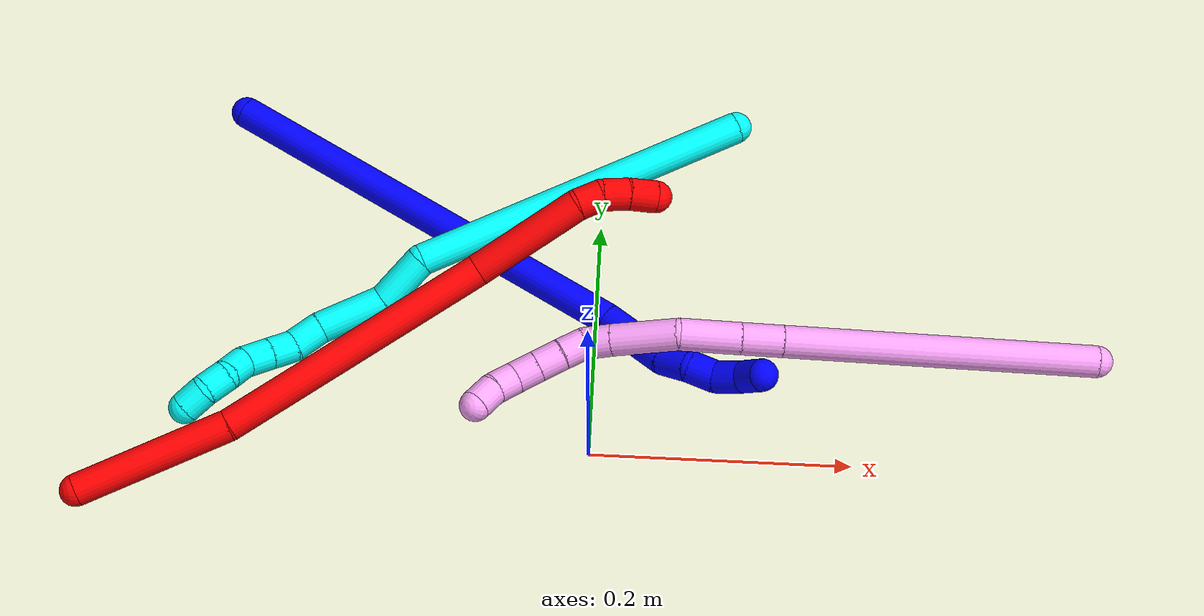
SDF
<sdf version="1.7">
 <world name="default">
  <plugin name="TubeGeneratorPlugin" filename="libtube_generator_plugin.so"/>
  <model name="photoneo_s_sensor">
   <static>1</static>
   <pose>0 0 2 1.57079 1.57079 3.14159</pose>
   <link name="link">
    <inertial><mass>0.1</mass></inertial>
    <sensor name="sensor" type="depth">
     <update_rate>30</update_rate>
     <camera>
      <horizontal_fov>1.22</horizontal_fov>
      <image><width>1920</width><height>1200</height><format>B8G8R8</format></image>
      <clip><near>0.1</near><far>4</far></clip>
      <depth_camera><output>points</output></depth_camera>
     </camera>
     <plugin name="camera_plugin" filename="libgazebo_ros_depth_camera.so">
      <baseline>0.2</baseline>
      <alwaysOn>1</alwaysOn>
      <updateRate>0.0</updateRate>
      <cameraName>camera_ir</cameraName>
      <imageTopicName>/camera/color/image_raw</imageTopicName>
      <cameraInfoTopicName>/camera/color/camera_info</cameraInfoTopicName>
      <depthImageTopicName>/camera/depth/image_raw</depthImageTopicName>
      <depthImageCameraInfoTopicName>/camera/depth/camera_info</depthImageCameraInfoTopicName>
      <pointCloudTopicName>/camera/depth/points</pointCloudTopicName>
      <frameName>fr_optical</frameName>
      <pointCloudCutoff>0.1</pointCloudCutoff>
      <pointCloudCutoffMax>2.0</pointCloudCutoffMax>
      <distortionK1>0</distortionK1>
      <distortionK2>0</distortionK2>
      <distortionK3>0</distortionK3>
      <distortionT1>0</distortionT1>
      <distortionT2>0</distortionT2>
      <CxPrime>0</CxPrime>
      <Cx>0</Cx>
      <Cy>0</Cy>
      <focalLength>0</focalLength>
      <hackBaseline>0</hackBaseline>
     </plugin>
    </sensor>
   </link>
  </model>
  <gravity>0 0 -9.8</gravity>
  <magnetic_field>6e-06 2.3e-05 -4.2e-05</magnetic_field>
  <atmosphere type="adiabatic"/>
  <physics name="default_physics" default="0" type="ode">
   <max_step_size>0.003</max_step_size>
   <real_time_factor>1</real_time_factor>
   <real_time_update_rate>1000</real_time_update_rate>
   <max_contacts>10000</max_contacts>
   <ode>
    <solver>
     <type>quick</type>
     <iters>100</iters>
     <sor>1.3</sor>
     <use_dynamic_moi_rescaling>0</use_dynamic_moi_rescaling>
    </solver>
    <constraints>
     <contact_max_correcting_vel>0</contact_max_correcting_vel>
     <contact_surface_layer>0.001</contact_surface_layer>
     <cfm>0</cfm>
     <erp>0.2</erp>
    </constraints>
   </ode>
  </physics>
  <scene><ambient>0.4 0.4 0.4 1</ambient><background>0.7 0.7 0.7 1</background><shadows>0</shadows></scene>
  <audio><device>default</device></audio>
  <spherical_coordinates>
   <surface_model>EARTH_WGS84</surface_model>
   <latitude_deg>0</latitude_deg>
   <longitude_deg>0</longitude_deg>
   <elevation>0</elevation>
   <heading_deg>0</heading_deg>
  </spherical_coordinates>
  <model name="bin">
   <static>1</static>
   <link name="bottom">
    <collision name="collision-bottom">
     <pose>0 0 -0.01 0 -0 0</pose>
     <geometry><box><size>0.8 0.6 0.02</size></box></geometry>
     <surface>
      <friction><ode><mu>100</mu><mu2>100</mu2></ode></friction>
      <contact><collide_bitmask>65535</collide_bitmask></contact>
     </surface>
    </collision>
   </link>
   <link name="west_wall">
    <collision name="collision-west_wall">
     <pose>-0.41 0 0.1 0 -0 0</pose>
     <geometry><box><size>0.02 0.6 0.2</size></box></geometry>
     <surface>
      <friction><ode><mu>100</mu><mu2>100</mu2></ode></friction>
      <contact><collide_bitmask>65535</collide_bitmask></contact>
     </surface>
    </collision>
   </link>
   <link name="east_wall">
    <collision name="collision-east_wall">
     <pose>0.41 0 0.1 0 -0 0</pose>
     <geometry><box><size>0.02 0.6 0.2</size></box></geometry>
     <surface>
      <friction><ode><mu>100</mu><mu2>100</mu2></ode></friction>
      <contact><collide_bitmask>65535</collide_bitmask></contact>
     </surface>
    </collision>
   </link>
   <link name="south_wall">
    <collision name="collision-south_wall">
     <pose>0 -0.31 0.1 0 -0 0</pose>
     <geometry><box><size>0.8 0.02 0.2</size></box></geometry>
     <surface>
      <friction><ode><mu>100</mu><mu2>100</mu2></ode></friction>
      <contact><collide_bitmask>65535</collide_bitmask></contact>
     </surface>
    </collision>
   </link>
   <link name="north_wall">
    <collision name="collision-north_wall">
     <pose>0 0.31 0.1 0 -0 0</pose>
     <geometry><box><size>0.8 0.02 0.2</size></box></geometry>
     <surface>
      <friction><ode><mu>100</mu><mu2>100</mu2></ode></friction>
      <contact><collide_bitmask>65535</collide_bitmask></contact>
     </surface>
    </collision>
   </link>
  </model>
  <model name="1">
   <static>0</static>
   <link name="1">
    <collision name="collision-cylinder-e_1_1_4">
     <pose>0.153088 -0.056311 0.064611 0.716864 1.06042 0.432335</pose>
     <geometry><cylinder><radius>0.0125</radius><length>0.350894</length></cylinder></geometry>
     <surface>
      <friction><ode><mu>1.16</mu><mu2>1.16</mu2><slip1>0</slip1><slip2>0</slip2></ode></friction>
      <contact><ode><kp>1e+06</kp><kd>1</kd><max_vel>0</max_vel><min_depth>0.001</min_depth></ode></contact>
     </surface>
    </collision>
    <visual name="visual-cylinder-e_1_1_4">
     <pose>0.153088 -0.056311 0.064611 0.716864 1.06042 0.432335</pose>
     <geometry><cylinder><radius>0.0125</radius><length>0.350894</length></cylinder></geometry>
     <material><ambient>0 0 1 1</ambient></material>
    </visual>
    <collision name="collision-cylinder-e_2_4_5">
     <pose>0.334237 -0.118992 0.133987 0.928641 1.29458 0.723853</pose>
     <geometry><cylinder><radius>0.0125</radius><length>0.058332</length></cylinder></geometry>
     <surface>
      <friction><ode><mu>1.16</mu><mu2>1.16</mu2><slip1>0</slip1><slip2>0</slip2></ode></friction>
      <contact><ode><kp>1e+06</kp><kd>1</kd><max_vel>0</max_vel><min_depth>0.001</min_depth></ode></contact>
     </surface>
    </collision>
    <visual name="visual-cylinder-e_2_4_5">
     <pose>0.334237 -0.118992 0.133987 0.928641 1.29458 0.723853</pose>
     <geometry><cylinder><radius>0.0125</radius><length>0.058332</length></cylinder></geometry>
     <material><ambient>0 0 1 1</ambient></material>
    </visual>
    <collision name="collision-cylinder-e_3_5_6">
     <pose>0.373383 -0.13146 0.138743 1.57209 1.06783 1.06897</pose>
     <geometry><cylinder><radius>0.0125</radius><length>0.025303</length></cylinder></geometry>
     <surface>
      <friction><ode><mu>1.16</mu><mu2>1.16</mu2><slip1>0</slip1><slip2>0</slip2></ode></friction>
      <contact><ode><kp>1e+06</kp><kd>1</kd><max_vel>0</max_vel><min_depth>0.001</min_depth></ode></contact>
     </surface>
    </collision>
    <visual name="visual-cylinder-e_3_5_6">
     <pose>0.373383 -0.13146 0.138743 1.57209 1.06783 1.06897</pose>
     <geometry><cylinder><radius>0.0125</radius><length>0.025303</length></cylinder></geometry>
     <material><ambient>0 0 1 1</ambient></material>
    </visual>
    <collision name="collision-cylinder-e_4_6_7">
     <pose>0.393169 -0.142444 0.143148 0.836145 0.923032 0.43491</pose>
     <geometry><cylinder><radius>0.0125</radius><length>0.021823</length></cylinder></geometry>
     <surface>
      <friction><ode><mu>1.16</mu><mu2>1.16</mu2><slip1>0</slip1><slip2>0</slip2></ode></friction>
      <contact><ode><kp>1e+06</kp><kd>1</kd><max_vel>0</max_vel><min_depth>0.001</min_depth></ode></contact>
     </surface>
    </collision>
    <visual name="visual-cylinder-e_4_6_7">
     <pose>0.393169 -0.142444 0.143148 0.836145 0.923032 0.43491</pose>
     <geometry><cylinder><radius>0.0125</radius><length>0.021823</length></cylinder></geometry>
     <material><ambient>0 0 1 1</ambient></material>
    </visual>
    <collision name="collision-cylinder-e_5_7_8">
     <pose>0.410038 -0.155245 0.147635 1.56158 0.801151 0.794556</pose>
     <geometry><cylinder><radius>0.0125</radius><length>0.022749</length></cylinder></geometry>
     <surface>
      <friction><ode><mu>1.16</mu><mu2>1.16</mu2><slip1>0</slip1><slip2>0</slip2></ode></friction>
      <contact><ode><kp>1e+06</kp><kd>1</kd><max_vel>0</max_vel><min_depth>0.001</min_depth></ode></contact>
     </surface>
    </collision>
    <visual name="visual-cylinder-e_5_7_8">
     <pose>0.410038 -0.155245 0.147635 1.56158 0.801151 0.794556</pose>
     <geometry><cylinder><radius>0.0125</radius><length>0.022749</length></cylinder></geometry>
     <material><ambient>0 0 1 1</ambient></material>
    </visual>
    <collision name="collision-cylinder-e_6_8_2">
     <pose>0.425922 -0.169082 0.143887 2.14375 0.830569 1.36064</pose>
     <geometry><cylinder><radius>0.0125</radius><length>0.020899</length></cylinder></geometry>
     <surface>
      <friction><ode><mu>1.16</mu><mu2>1.16</mu2><slip1>0</slip1><slip2>0</slip2></ode></friction>
      <contact><ode><kp>1e+06</kp><kd>1</kd><max_vel>0</max_vel><min_depth>0.001</min_depth></ode></contact>
     </surface>
    </collision>
    <visual name="visual-cylinder-e_6_8_2">
     <pose>0.425922 -0.169082 0.143887 2.14375 0.830569 1.36064</pose>
     <geometry><cylinder><radius>0.0125</radius><length>0.020899</length></cylinder></geometry>
     <material><ambient>0 0 1 1</ambient></material>
    </visual>
    <collision name="collision-sphere-2">
     <pose>0.433637 -0.175004 0.140066 0 -0 0</pose>
     <geometry><sphere><radius>0.0125</radius></sphere></geometry>
     <surface>
      <friction><ode><mu>1.16</mu><mu2>1.16</mu2><slip1>0</slip1><slip2>0</slip2></ode></friction>
      <contact><ode><kp>1e+06</kp><kd>1</kd><max_vel>0</max_vel><min_depth>0.001</min_depth></ode></contact>
     </surface>
    </collision>
    <visual name="visual-sphere-2">
     <pose>0.433637 -0.175004 0.140066 0 -0 0</pose>
     <geometry><sphere><radius>0.0125</radius></sphere></geometry>
     <material><ambient>0 0 1 1</ambient></material>
    </visual>
    <collision name="collision-sphere-4">
     <pose>0.306177 -0.112622 0.129223 0 -0 0</pose>
     <geometry><sphere><radius>0.0125</radius></sphere></geometry>
     <surface>
      <friction><ode><mu>1.16</mu><mu2>1.16</mu2><slip1>0</slip1><slip2>0</slip2></ode></friction>
      <contact><ode><kp>1e+06</kp><kd>1</kd><max_vel>0</max_vel><min_depth>0.001</min_depth></ode></contact>
     </surface>
    </collision>
    <visual name="visual-sphere-4">
     <pose>0.306177 -0.112622 0.129223 0 -0 0</pose>
     <geometry><sphere><radius>0.0125</radius></sphere></geometry>
     <material><ambient>0 0 1 1</ambient></material>
    </visual>
    <collision name="collision-sphere-1">
     <geometry><sphere><radius>0.0125</radius></sphere></geometry>
     <surface>
      <friction><ode><mu>1.16</mu><mu2>1.16</mu2><slip1>0</slip1><slip2>0</slip2></ode></friction>
      <contact><ode><kp>1e+06</kp><kd>1</kd><max_vel>0</max_vel><min_depth>0.001</min_depth></ode></contact>
     </surface>
    </collision>
    <visual name="visual-sphere-1">
     <geometry><sphere><radius>0.0125</radius></sphere></geometry>
     <material><ambient>0 0 1 1</ambient></material>
    </visual>
    <collision name="collision-sphere-8">
     <pose>0.418207 -0.16316 0.147708 0 -0 0</pose>
     <geometry><sphere><radius>0.0125</radius></sphere></geometry>
     <surface>
      <friction><ode><mu>1.16</mu><mu2>1.16</mu2><slip1>0</slip1><slip2>0</slip2></ode></friction>
      <contact><ode><kp>1e+06</kp><kd>1</kd><max_vel>0</max_vel><min_depth>0.001</min_depth></ode></contact>
     </surface>
    </collision>
    <visual name="visual-sphere-8">
     <pose>0.418207 -0.16316 0.147708 0 -0 0</pose>
     <geometry><sphere><radius>0.0125</radius></sphere></geometry>
     <material><ambient>0 0 1 1</ambient></material>
    </visual>
    <collision name="collision-sphere-5">
     <pose>0.362298 -0.125362 0.138751 0 -0 0</pose>
     <geometry><sphere><radius>0.0125</radius></sphere></geometry>
     <surface>
      <friction><ode><mu>1.16</mu><mu2>1.16</mu2><slip1>0</slip1><slip2>0</slip2></ode></friction>
      <contact><ode><kp>1e+06</kp><kd>1</kd><max_vel>0</max_vel><min_depth>0.001</min_depth></ode></contact>
     </surface>
    </collision>
    <visual name="visual-sphere-5">
     <pose>0.362298 -0.125362 0.138751 0 -0 0</pose>
     <geometry><sphere><radius>0.0125</radius></sphere></geometry>
     <material><ambient>0 0 1 1</ambient></material>
    </visual>
    <collision name="collision-sphere-6">
     <pose>0.384467 -0.137558 0.138735 0 -0 0</pose>
     <geometry><sphere><radius>0.0125</radius></sphere></geometry>
     <surface>
      <friction><ode><mu>1.16</mu><mu2>1.16</mu2><slip1>0</slip1><slip2>0</slip2></ode></friction>
      <contact><ode><kp>1e+06</kp><kd>1</kd><max_vel>0</max_vel><min_depth>0.001</min_depth></ode></contact>
     </surface>
    </collision>
    <visual name="visual-sphere-6">
     <pose>0.384467 -0.137558 0.138735 0 -0 0</pose>
     <geometry><sphere><radius>0.0125</radius></sphere></geometry>
     <material><ambient>0 0 1 1</ambient></material>
    </visual>
    <collision name="collision-sphere-7">
     <pose>0.40187 -0.14733 0.147562 0 -0 0</pose>
     <geometry><sphere><radius>0.0125</radius></sphere></geometry>
     <surface>
      <friction><ode><mu>1.16</mu><mu2>1.16</mu2><slip1>0</slip1><slip2>0</slip2></ode></friction>
      <contact><ode><kp>1e+06</kp><kd>1</kd><max_vel>0</max_vel><min_depth>0.001</min_depth></ode></contact>
     </surface>
    </collision>
    <visual name="visual-sphere-7">
     <pose>0.40187 -0.14733 0.147562 0 -0 0</pose>
     <geometry><sphere><radius>0.0125</radius></sphere></geometry>
     <material><ambient>0 0 1 1</ambient></material>
    </visual>
    <inertial>
     <pose>0.218943 -0.080401 0.086975 0 -0 0</pose>
     <mass>0.5</mass>
     <inertia>
      <ixx>0.00239</ixx>
      <ixy>0</ixy>
      <ixz>0</ixz>
      <iyy>0.004098</iyy>
      <iyz>0</iyz>
      <izz>-0.001998</izz>
     </inertia>
    </inertial>
   </link>
   <pose>-0.29351 0.288501 0.012214 -2.75116 -0.242989 -0.979643</pose>
  </model>
  <model name="2">
   <static>0</static>
   <link name="2">
    <collision name="collision-cylinder-e_1_1_4">
     <pose>0.020465 0.006267 -0.057775 -3.03355 0.338591 -2.52881</pose>
     <geometry><cylinder><radius>0.0125</radius><length>0.123223</length></cylinder></geometry>
     <surface>
      <friction><ode><mu>1.16</mu><mu2>1.16</mu2><slip1>0</slip1><slip2>0</slip2></ode></friction>
      <contact><ode><kp>1e+06</kp><kd>1</kd><max_vel>0</max_vel><min_depth>0.001</min_depth></ode></contact>
     </surface>
    </collision>
    <visual name="visual-cylinder-e_1_1_4">
     <pose>0.020465 0.006267 -0.057775 -3.03355 0.338591 -2.52881</pose>
     <geometry><cylinder><radius>0.0125</radius><length>0.123223</length></cylinder></geometry>
     <material><ambient>1 0 0 1</ambient></material>
    </visual>
    <collision name="collision-cylinder-e_2_4_5">
     <pose>0.075718 0.042042 -0.216984 -2.8585 0.318126 -1.68896</pose>
     <geometry><cylinder><radius>0.0125</radius><length>0.222442</length></cylinder></geometry>
     <surface>
      <friction><ode><mu>1.16</mu><mu2>1.16</mu2><slip1>0</slip1><slip2>0</slip2></ode></friction>
      <contact><ode><kp>1e+06</kp><kd>1</kd><max_vel>0</max_vel><min_depth>0.001</min_depth></ode></contact>
     </surface>
    </collision>
    <visual name="visual-cylinder-e_2_4_5">
     <pose>0.075718 0.042042 -0.216984 -2.8585 0.318126 -1.68896</pose>
     <geometry><cylinder><radius>0.0125</radius><length>0.222442</length></cylinder></geometry>
     <material><ambient>1 0 0 1</ambient></material>
    </visual>
    <collision name="collision-cylinder-e_3_5_6">
     <pose>0.133521 0.081876 -0.356732 -2.87833 0.525593 -2.22689</pose>
     <geometry><cylinder><radius>0.0125</radius><length>0.091742</length></cylinder></geometry>
     <surface>
      <friction><ode><mu>1.16</mu><mu2>1.16</mu2><slip1>0</slip1><slip2>0</slip2></ode></friction>
      <contact><ode><kp>1e+06</kp><kd>1</kd><max_vel>0</max_vel><min_depth>0.001</min_depth></ode></contact>
     </surface>
    </collision>
    <visual name="visual-cylinder-e_3_5_6">
     <pose>0.133521 0.081876 -0.356732 -2.87833 0.525593 -2.22689</pose>
     <geometry><cylinder><radius>0.0125</radius><length>0.091742</length></cylinder></geometry>
     <material><ambient>1 0 0 1</ambient></material>
    </visual>
    <collision name="collision-cylinder-e_4_6_7">
     <pose>0.159566 0.093208 -0.404606 -3.03669 0.305327 -2.48393</pose>
     <geometry><cylinder><radius>0.0125</radius><length>0.020162</length></cylinder></geometry>
     <surface>
      <friction><ode><mu>1.16</mu><mu2>1.16</mu2><slip1>0</slip1><slip2>0</slip2></ode></friction>
      <contact><ode><kp>1e+06</kp><kd>1</kd><max_vel>0</max_vel><min_depth>0.001</min_depth></ode></contact>
     </surface>
    </collision>
    <visual name="visual-cylinder-e_4_6_7">
     <pose>0.159566 0.093208 -0.404606 -3.03669 0.305327 -2.48393</pose>
     <geometry><cylinder><radius>0.0125</radius><length>0.020162</length></cylinder></geometry>
     <material><ambient>1 0 0 1</ambient></material>
    </visual>
    <collision name="collision-cylinder-e_5_7_8">
     <pose>0.164188 0.091975 -0.424325 2.92449 0.15183 1.2187</pose>
     <geometry><cylinder><radius>0.0125</radius><length>0.021043</length></cylinder></geometry>
     <surface>
      <friction><ode><mu>1.16</mu><mu2>1.16</mu2><slip1>0</slip1><slip2>0</slip2></ode></friction>
      <contact><ode><kp>1e+06</kp><kd>1</kd><max_vel>0</max_vel><min_depth>0.001</min_depth></ode></contact>
     </surface>
    </collision>
    <visual name="visual-cylinder-e_5_7_8">
     <pose>0.164188 0.091975 -0.424325 2.92449 0.15183 1.2187</pose>
     <geometry><cylinder><radius>0.0125</radius><length>0.021043</length></cylinder></geometry>
     <material><ambient>1 0 0 1</ambient></material>
    </visual>
    <collision name="collision-cylinder-e_6_8_2">
     <pose>0.166494 0.086256 -0.444568 2.80949 0.066882 0.394046</pose>
     <geometry><cylinder><radius>0.0125</radius><length>0.021388</length></cylinder></geometry>
     <surface>
      <friction><ode><mu>1.16</mu><mu2>1.16</mu2><slip1>0</slip1><slip2>0</slip2></ode></friction>
      <contact><ode><kp>1e+06</kp><kd>1</kd><max_vel>0</max_vel><min_depth>0.001</min_depth></ode></contact>
     </surface>
    </collision>
    <visual name="visual-cylinder-e_6_8_2">
     <pose>0.166494 0.086256 -0.444568 2.80949 0.066882 0.394046</pose>
     <geometry><cylinder><radius>0.0125</radius><length>0.021388</length></cylinder></geometry>
     <material><ambient>1 0 0 1</ambient></material>
    </visual>
    <collision name="collision-sphere-2">
     <pose>0.167209 0.082777 -0.454655 0 -0 0</pose>
     <geometry><sphere><radius>0.0125</radius></sphere></geometry>
     <surface>
      <friction><ode><mu>1.16</mu><mu2>1.16</mu2><slip1>0</slip1><slip2>0</slip2></ode></friction>
      <contact><ode><kp>1e+06</kp><kd>1</kd><max_vel>0</max_vel><min_depth>0.001</min_depth></ode></contact>
     </surface>
    </collision>
    <visual name="visual-sphere-2">
     <pose>0.167209 0.082777 -0.454655 0 -0 0</pose>
     <geometry><sphere><radius>0.0125</radius></sphere></geometry>
     <material><ambient>1 0 0 1</ambient></material>
    </visual>
    <collision name="collision-sphere-4">
     <pose>0.04093 0.012533 -0.115549 0 -0 0</pose>
     <geometry><sphere><radius>0.0125</radius></sphere></geometry>
     <surface>
      <friction><ode><mu>1.16</mu><mu2>1.16</mu2><slip1>0</slip1><slip2>0</slip2></ode></friction>
      <contact><ode><kp>1e+06</kp><kd>1</kd><max_vel>0</max_vel><min_depth>0.001</min_depth></ode></contact>
     </surface>
    </collision>
    <visual name="visual-sphere-4">
     <pose>0.04093 0.012533 -0.115549 0 -0 0</pose>
     <geometry><sphere><radius>0.0125</radius></sphere></geometry>
     <material><ambient>1 0 0 1</ambient></material>
    </visual>
    <collision name="collision-sphere-1">
     <geometry><sphere><radius>0.0125</radius></sphere></geometry>
     <surface>
      <friction><ode><mu>1.16</mu><mu2>1.16</mu2><slip1>0</slip1><slip2>0</slip2></ode></friction>
      <contact><ode><kp>1e+06</kp><kd>1</kd><max_vel>0</max_vel><min_depth>0.001</min_depth></ode></contact>
     </surface>
    </collision>
    <visual name="visual-sphere-1">
     <geometry><sphere><radius>0.0125</radius></sphere></geometry>
     <material><ambient>1 0 0 1</ambient></material>
    </visual>
    <collision name="collision-sphere-8">
     <pose>0.165779 0.089735 -0.434481 0 -0 0</pose>
     <geometry><sphere><radius>0.0125</radius></sphere></geometry>
     <surface>
      <friction><ode><mu>1.16</mu><mu2>1.16</mu2><slip1>0</slip1><slip2>0</slip2></ode></friction>
      <contact><ode><kp>1e+06</kp><kd>1</kd><max_vel>0</max_vel><min_depth>0.001</min_depth></ode></contact>
     </surface>
    </collision>
    <visual name="visual-sphere-8">
     <pose>0.165779 0.089735 -0.434481 0 -0 0</pose>
     <geometry><sphere><radius>0.0125</radius></sphere></geometry>
     <material><ambient>1 0 0 1</ambient></material>
    </visual>
    <collision name="collision-sphere-5">
     <pose>0.110507 0.07155 -0.31842 0 -0 0</pose>
     <geometry><sphere><radius>0.0125</radius></sphere></geometry>
     <surface>
      <friction><ode><mu>1.16</mu><mu2>1.16</mu2><slip1>0</slip1><slip2>0</slip2></ode></friction>
      <contact><ode><kp>1e+06</kp><kd>1</kd><max_vel>0</max_vel><min_depth>0.001</min_depth></ode></contact>
     </surface>
    </collision>
    <visual name="visual-sphere-5">
     <pose>0.110507 0.07155 -0.31842 0 -0 0</pose>
     <geometry><sphere><radius>0.0125</radius></sphere></geometry>
     <material><ambient>1 0 0 1</ambient></material>
    </visual>
    <collision name="collision-sphere-6">
     <pose>0.156536 0.092202 -0.395044 0 -0 0</pose>
     <geometry><sphere><radius>0.0125</radius></sphere></geometry>
     <surface>
      <friction><ode><mu>1.16</mu><mu2>1.16</mu2><slip1>0</slip1><slip2>0</slip2></ode></friction>
      <contact><ode><kp>1e+06</kp><kd>1</kd><max_vel>0</max_vel><min_depth>0.001</min_depth></ode></contact>
     </surface>
    </collision>
    <visual name="visual-sphere-6">
     <pose>0.156536 0.092202 -0.395044 0 -0 0</pose>
     <geometry><sphere><radius>0.0125</radius></sphere></geometry>
     <material><ambient>1 0 0 1</ambient></material>
    </visual>
    <collision name="collision-sphere-7">
     <pose>0.162597 0.094215 -0.414168 0 -0 0</pose>
     <geometry><sphere><radius>0.0125</radius></sphere></geometry>
     <surface>
      <friction><ode><mu>1.16</mu><mu2>1.16</mu2><slip1>0</slip1><slip2>0</slip2></ode></friction>
      <contact><ode><kp>1e+06</kp><kd>1</kd><max_vel>0</max_vel><min_depth>0.001</min_depth></ode></contact>
     </surface>
    </collision>
    <visual name="visual-sphere-7">
     <pose>0.162597 0.094215 -0.414168 0 -0 0</pose>
     <geometry><sphere><radius>0.0125</radius></sphere></geometry>
     <material><ambient>1 0 0 1</ambient></material>
    </visual>
    <inertial>
     <pose>0.083695 0.04659 -0.229416 0 -0 0</pose>
     <mass>0.5</mass>
     <inertia>
      <ixx>-0.001255</ixx>
      <ixy>0</ixy>
      <ixz>0</ixz>
      <iyy>-0.000634</iyy>
      <iyz>0</iyz>
      <izz>-0.00069</izz>
     </inertia>
    </inertial>
   </link>
   <pose>-0.382225 -0.054182 0.011836 0.715039 -1.25627 -0.326121</pose>
  </model>
  <model name="3">
   <static>0</static>
   <link name="3">
    <collision name="collision-cylinder-e_1_1_4">
     <pose>-0.108577 -0.061276 -0.056661 2.31708 -0.91546 -1.68961</pose>
     <geometry><cylinder><radius>0.0125</radius><length>0.273892</length></cylinder></geometry>
     <surface>
      <friction><ode><mu>1.16</mu><mu2>1.16</mu2><slip1>0</slip1><slip2>0</slip2></ode></friction>
      <contact><ode><kp>1e+06</kp><kd>1</kd><max_vel>0</max_vel><min_depth>0.001</min_depth></ode></contact>
     </surface>
    </collision>
    <visual name="visual-cylinder-e_1_1_4">
     <pose>-0.108577 -0.061276 -0.056661 2.31708 -0.91546 -1.68961</pose>
     <geometry><cylinder><radius>0.0125</radius><length>0.273892</length></cylinder></geometry>
     <material><ambient>0.003922 1 0.996078 1</ambient></material>
    </visual>
    <collision name="collision-cylinder-e_2_4_5">
     <pose>-0.226023 -0.137448 -0.126224 2.28456 -0.422971 -0.878677</pose>
     <geometry><cylinder><radius>0.0125</radius><length>0.043221</length></cylinder></geometry>
     <surface>
      <friction><ode><mu>1.16</mu><mu2>1.16</mu2><slip1>0</slip1><slip2>0</slip2></ode></friction>
      <contact><ode><kp>1e+06</kp><kd>1</kd><max_vel>0</max_vel><min_depth>0.001</min_depth></ode></contact>
     </surface>
    </collision>
    <visual name="visual-cylinder-e_2_4_5">
     <pose>-0.226023 -0.137448 -0.126224 2.28456 -0.422971 -0.878677</pose>
     <geometry><cylinder><radius>0.0125</radius><length>0.043221</length></cylinder></geometry>
     <material><ambient>0.003922 1 0.996078 1</ambient></material>
    </visual>
    <collision name="collision-cylinder-e_3_5_6">
     <pose>-0.255333 -0.163891 -0.152087 2.41386 -0.866711 -1.7643</pose>
     <geometry><cylinder><radius>0.0125</radius><length>0.053631</length></cylinder></geometry>
     <surface>
      <friction><ode><mu>1.16</mu><mu2>1.16</mu2><slip1>0</slip1><slip2>0</slip2></ode></friction>
      <contact><ode><kp>1e+06</kp><kd>1</kd><max_vel>0</max_vel><min_depth>0.001</min_depth></ode></contact>
     </surface>
    </collision>
    <visual name="visual-cylinder-e_3_5_6">
     <pose>-0.255333 -0.163891 -0.152087 2.41386 -0.866711 -1.7643</pose>
     <geometry><cylinder><radius>0.0125</radius><length>0.053631</length></cylinder></geometry>
     <material><ambient>0.003922 1 0.996078 1</ambient></material>
    </visual>
    <collision name="collision-cylinder-e_4_6_7">
     <pose>-0.284962 -0.183586 -0.168539 1.97553 -0.803409 -1.14446</pose>
     <geometry><cylinder><radius>0.0125</radius><length>0.025537</length></cylinder></geometry>
     <surface>
      <friction><ode><mu>1.16</mu><mu2>1.16</mu2><slip1>0</slip1><slip2>0</slip2></ode></friction>
      <contact><ode><kp>1e+06</kp><kd>1</kd><max_vel>0</max_vel><min_depth>0.001</min_depth></ode></contact>
     </surface>
    </collision>
    <visual name="visual-cylinder-e_4_6_7">
     <pose>-0.284962 -0.183586 -0.168539 1.97553 -0.803409 -1.14446</pose>
     <geometry><cylinder><radius>0.0125</radius><length>0.025537</length></cylinder></geometry>
     <material><ambient>0.003922 1 0.996078 1</ambient></material>
    </visual>
    <collision name="collision-cylinder-e_5_7_8">
     <pose>-0.303308 -0.196088 -0.173723 1.94169 -1.09902 -1.4604</pose>
     <geometry><cylinder><radius>0.0125</radius><length>0.020559</length></cylinder></geometry>
     <surface>
      <friction><ode><mu>1.16</mu><mu2>1.16</mu2><slip1>0</slip1><slip2>0</slip2></ode></friction>
      <contact><ode><kp>1e+06</kp><kd>1</kd><max_vel>0</max_vel><min_depth>0.001</min_depth></ode></contact>
     </surface>
    </collision>
    <visual name="visual-cylinder-e_5_7_8">
     <pose>-0.303308 -0.196088 -0.173723 1.94169 -1.09902 -1.4604</pose>
     <geometry><cylinder><radius>0.0125</radius><length>0.020559</length></cylinder></geometry>
     <material><ambient>0.003922 1 0.996078 1</ambient></material>
    </visual>
    <collision name="collision-cylinder-e_6_8_9">
     <pose>-0.322343 -0.205243 -0.17654 1.80088 -1.1079 -1.32507</pose>
     <geometry><cylinder><radius>0.0125</radius><length>0.022082</length></cylinder></geometry>
     <surface>
      <friction><ode><mu>1.16</mu><mu2>1.16</mu2><slip1>0</slip1><slip2>0</slip2></ode></friction>
      <contact><ode><kp>1e+06</kp><kd>1</kd><max_vel>0</max_vel><min_depth>0.001</min_depth></ode></contact>
     </surface>
    </collision>
    <visual name="visual-cylinder-e_6_8_9">
     <pose>-0.322343 -0.205243 -0.17654 1.80088 -1.1079 -1.32507</pose>
     <geometry><cylinder><radius>0.0125</radius><length>0.022082</length></cylinder></geometry>
     <material><ambient>0.003922 1 0.996078 1</ambient></material>
    </visual>
    <collision name="collision-cylinder-e_7_9_10">
     <pose>-0.339831 -0.216948 -0.175321 1.24361 -0.806606 -0.593508</pose>
     <geometry><cylinder><radius>0.0125</radius><length>0.021077</length></cylinder></geometry>
     <surface>
      <friction><ode><mu>1.16</mu><mu2>1.16</mu2><slip1>0</slip1><slip2>0</slip2></ode></friction>
      <contact><ode><kp>1e+06</kp><kd>1</kd><max_vel>0</max_vel><min_depth>0.001</min_depth></ode></contact>
     </surface>
    </collision>
    <visual name="visual-cylinder-e_7_9_10">
     <pose>-0.339831 -0.216948 -0.175321 1.24361 -0.806606 -0.593508</pose>
     <geometry><cylinder><radius>0.0125</radius><length>0.021077</length></cylinder></geometry>
     <material><ambient>0.003922 1 0.996078 1</ambient></material>
    </visual>
    <collision name="collision-cylinder-e_8_10_11">
     <pose>-0.354634 -0.230357 -0.175417 1.92961 -0.803005 -1.09938</pose>
     <geometry><cylinder><radius>0.0125</radius><length>0.020002</length></cylinder></geometry>
     <surface>
      <friction><ode><mu>1.16</mu><mu2>1.16</mu2><slip1>0</slip1><slip2>0</slip2></ode></friction>
      <contact><ode><kp>1e+06</kp><kd>1</kd><max_vel>0</max_vel><min_depth>0.001</min_depth></ode></contact>
     </surface>
    </collision>
    <visual name="visual-cylinder-e_8_10_11">
     <pose>-0.354634 -0.230357 -0.175417 1.92961 -0.803005 -1.09938</pose>
     <geometry><cylinder><radius>0.0125</radius><length>0.020002</length></cylinder></geometry>
     <material><ambient>0.003922 1 0.996078 1</ambient></material>
    </visual>
    <collision name="collision-cylinder-e_9_11_2">
     <pose>-0.366962 -0.243175 -0.183669 2.31493 -0.538988 -1.12404</pose>
     <geometry><cylinder><radius>0.0125</radius><length>0.02</length></cylinder></geometry>
     <surface>
      <friction><ode><mu>1.16</mu><mu2>1.16</mu2><slip1>0</slip1><slip2>0</slip2></ode></friction>
      <contact><ode><kp>1e+06</kp><kd>1</kd><max_vel>0</max_vel><min_depth>0.001</min_depth></ode></contact>
     </surface>
    </collision>
    <visual name="visual-cylinder-e_9_11_2">
     <pose>-0.366962 -0.243175 -0.183669 2.31493 -0.538988 -1.12404</pose>
     <geometry><cylinder><radius>0.0125</radius><length>0.02</length></cylinder></geometry>
     <material><ambient>0.003922 1 0.996078 1</ambient></material>
    </visual>
    <collision name="collision-sphere-2">
     <pose>-0.372094 -0.249489 -0.189482 0 -0 0</pose>
     <geometry><sphere><radius>0.0125</radius></sphere></geometry>
     <surface>
      <friction><ode><mu>1.16</mu><mu2>1.16</mu2><slip1>0</slip1><slip2>0</slip2></ode></friction>
      <contact><ode><kp>1e+06</kp><kd>1</kd><max_vel>0</max_vel><min_depth>0.001</min_depth></ode></contact>
     </surface>
    </collision>
    <visual name="visual-sphere-2">
     <pose>-0.372094 -0.249489 -0.189482 0 -0 0</pose>
     <geometry><sphere><radius>0.0125</radius></sphere></geometry>
     <material><ambient>0.003922 1 0.996078 1</ambient></material>
    </visual>
    <collision name="collision-sphere-11">
     <pose>-0.361829 -0.236861 -0.177856 0 -0 0</pose>
     <geometry><sphere><radius>0.0125</radius></sphere></geometry>
     <surface>
      <friction><ode><mu>1.16</mu><mu2>1.16</mu2><slip1>0</slip1><slip2>0</slip2></ode></friction>
      <contact><ode><kp>1e+06</kp><kd>1</kd><max_vel>0</max_vel><min_depth>0.001</min_depth></ode></contact>
     </surface>
    </collision>
    <visual name="visual-sphere-11">
     <pose>-0.361829 -0.236861 -0.177856 0 -0 0</pose>
     <geometry><sphere><radius>0.0125</radius></sphere></geometry>
     <material><ambient>0.003922 1 0.996078 1</ambient></material>
    </visual>
    <collision name="collision-sphere-10">
     <pose>-0.347439 -0.223853 -0.172977 0 -0 0</pose>
     <geometry><sphere><radius>0.0125</radius></sphere></geometry>
     <surface>
      <friction><ode><mu>1.16</mu><mu2>1.16</mu2><slip1>0</slip1><slip2>0</slip2></ode></friction>
      <contact><ode><kp>1e+06</kp><kd>1</kd><max_vel>0</max_vel><min_depth>0.001</min_depth></ode></contact>
     </surface>
    </collision>
    <visual name="visual-sphere-10">
     <pose>-0.347439 -0.223853 -0.172977 0 -0 0</pose>
     <geometry><sphere><radius>0.0125</radius></sphere></geometry>
     <material><ambient>0.003922 1 0.996078 1</ambient></material>
    </visual>
    <collision name="collision-sphere-9">
     <pose>-0.332222 -0.210043 -0.177664 0 -0 0</pose>
     <geometry><sphere><radius>0.0125</radius></sphere></geometry>
     <surface>
      <friction><ode><mu>1.16</mu><mu2>1.16</mu2><slip1>0</slip1><slip2>0</slip2></ode></friction>
      <contact><ode><kp>1e+06</kp><kd>1</kd><max_vel>0</max_vel><min_depth>0.001</min_depth></ode></contact>
     </surface>
    </collision>
    <visual name="visual-sphere-9">
     <pose>-0.332222 -0.210043 -0.177664 0 -0 0</pose>
     <geometry><sphere><radius>0.0125</radius></sphere></geometry>
     <material><ambient>0.003922 1 0.996078 1</ambient></material>
    </visual>
    <collision name="collision-sphere-4">
     <pose>-0.217153 -0.122553 -0.113323 0 -0 0</pose>
     <geometry><sphere><radius>0.0125</radius></sphere></geometry>
     <surface>
      <friction><ode><mu>1.16</mu><mu2>1.16</mu2><slip1>0</slip1><slip2>0</slip2></ode></friction>
      <contact><ode><kp>1e+06</kp><kd>1</kd><max_vel>0</max_vel><min_depth>0.001</min_depth></ode></contact>
     </surface>
    </collision>
    <visual name="visual-sphere-4">
     <pose>-0.217153 -0.122553 -0.113323 0 -0 0</pose>
     <geometry><sphere><radius>0.0125</radius></sphere></geometry>
     <material><ambient>0.003922 1 0.996078 1</ambient></material>
    </visual>
    <collision name="collision-sphere-1">
     <geometry><sphere><radius>0.0125</radius></sphere></geometry>
     <surface>
      <friction><ode><mu>1.16</mu><mu2>1.16</mu2><slip1>0</slip1><slip2>0</slip2></ode></friction>
      <contact><ode><kp>1e+06</kp><kd>1</kd><max_vel>0</max_vel><min_depth>0.001</min_depth></ode></contact>
     </surface>
    </collision>
    <visual name="visual-sphere-1">
     <geometry><sphere><radius>0.0125</radius></sphere></geometry>
     <material><ambient>0.003922 1 0.996078 1</ambient></material>
    </visual>
    <collision name="collision-sphere-8">
     <pose>-0.312465 -0.200442 -0.175416 0 -0 0</pose>
     <geometry><sphere><radius>0.0125</radius></sphere></geometry>
     <surface>
      <friction><ode><mu>1.16</mu><mu2>1.16</mu2><slip1>0</slip1><slip2>0</slip2></ode></friction>
      <contact><ode><kp>1e+06</kp><kd>1</kd><max_vel>0</max_vel><min_depth>0.001</min_depth></ode></contact>
     </surface>
    </collision>
    <visual name="visual-sphere-8">
     <pose>-0.312465 -0.200442 -0.175416 0 -0 0</pose>
     <geometry><sphere><radius>0.0125</radius></sphere></geometry>
     <material><ambient>0.003922 1 0.996078 1</ambient></material>
    </visual>
    <collision name="collision-sphere-5">
     <pose>-0.234894 -0.152344 -0.139125 0 -0 0</pose>
     <geometry><sphere><radius>0.0125</radius></sphere></geometry>
     <surface>
      <friction><ode><mu>1.16</mu><mu2>1.16</mu2><slip1>0</slip1><slip2>0</slip2></ode></friction>
      <contact><ode><kp>1e+06</kp><kd>1</kd><max_vel>0</max_vel><min_depth>0.001</min_depth></ode></contact>
     </surface>
    </collision>
    <visual name="visual-sphere-5">
     <pose>-0.234894 -0.152344 -0.139125 0 -0 0</pose>
     <geometry><sphere><radius>0.0125</radius></sphere></geometry>
     <material><ambient>0.003922 1 0.996078 1</ambient></material>
    </visual>
    <collision name="collision-sphere-6">
     <pose>-0.275772 -0.175438 -0.165048 0 -0 0</pose>
     <geometry><sphere><radius>0.0125</radius></sphere></geometry>
     <surface>
      <friction><ode><mu>1.16</mu><mu2>1.16</mu2><slip1>0</slip1><slip2>0</slip2></ode></friction>
      <contact><ode><kp>1e+06</kp><kd>1</kd><max_vel>0</max_vel><min_depth>0.001</min_depth></ode></contact>
     </surface>
    </collision>
    <visual name="visual-sphere-6">
     <pose>-0.275772 -0.175438 -0.165048 0 -0 0</pose>
     <geometry><sphere><radius>0.0125</radius></sphere></geometry>
     <material><ambient>0.003922 1 0.996078 1</ambient></material>
    </visual>
    <collision name="collision-sphere-7">
     <pose>-0.294151 -0.191734 -0.172029 0 -0 0</pose>
     <geometry><sphere><radius>0.0125</radius></sphere></geometry>
     <surface>
      <friction><ode><mu>1.16</mu><mu2>1.16</mu2><slip1>0</slip1><slip2>0</slip2></ode></friction>
      <contact><ode><kp>1e+06</kp><kd>1</kd><max_vel>0</max_vel><min_depth>0.001</min_depth></ode></contact>
     </surface>
    </collision>
    <visual name="visual-sphere-7">
     <pose>-0.294151 -0.191734 -0.172029 0 -0 0</pose>
     <geometry><sphere><radius>0.0125</radius></sphere></geometry>
     <material><ambient>0.003922 1 0.996078 1</ambient></material>
    </visual>
    <inertial>
     <pose>-0.190853 -0.117617 -0.103564 0 -0 0</pose>
     <mass>0.5</mass>
     <inertia>
      <ixx>-0.001211</ixx>
      <ixy>0</ixy>
      <ixz>0</ixz>
      <iyy>6.5e-05</iyy>
      <iyz>0</iyz>
      <izz>0.002163</izz>
     </inertia>
    </inertial>
   </link>
   <pose>0.103646 0.272613 0.045016 0.241665 0.537382 0.149204</pose>
  </model>
  <model name="4">
   <static>0</static>
   <link name="4">
    <collision name="collision-cylinder-e_1_1_4">
     <pose>-0.095452 -0.019439 0.074758 0.254398 -0.890442 -0.1219</pose>
     <geometry><cylinder><radius>0.0125</radius><length>0.245582</length></cylinder></geometry>
     <surface>
      <friction><ode><mu>1.16</mu><mu2>1.16</mu2><slip1>0</slip1><slip2>0</slip2></ode></friction>
      <contact><ode><kp>1e+06</kp><kd>1</kd><max_vel>0</max_vel><min_depth>0.001</min_depth></ode></contact>
     </surface>
    </collision>
    <visual name="visual-cylinder-e_1_1_4">
     <pose>-0.095452 -0.019439 0.074758 0.254398 -0.890442 -0.1219</pose>
     <geometry><cylinder><radius>0.0125</radius><length>0.245582</length></cylinder></geometry>
     <material><ambient>1 0.65098 0.996078 1</ambient></material>
    </visual>
    <collision name="collision-cylinder-e_2_4_5">
     <pose>-0.203511 -0.041418 0.159433 0.250691 -0.888789 -0.119855</pose>
     <geometry><cylinder><radius>0.0125</radius><length>0.03248</length></cylinder></geometry>
     <surface>
      <friction><ode><mu>1.16</mu><mu2>1.16</mu2><slip1>0</slip1><slip2>0</slip2></ode></friction>
      <contact><ode><kp>1e+06</kp><kd>1</kd><max_vel>0</max_vel><min_depth>0.001</min_depth></ode></contact>
     </surface>
    </collision>
    <visual name="visual-cylinder-e_2_4_5">
     <pose>-0.203511 -0.041418 0.159433 0.250691 -0.888789 -0.119855</pose>
     <geometry><cylinder><radius>0.0125</radius><length>0.03248</length></cylinder></geometry>
     <material><ambient>1 0.65098 0.996078 1</ambient></material>
    </visual>
    <collision name="collision-cylinder-e_3_5_6">
     <pose>-0.234504 -0.047557 0.184023 0.240545 -0.882943 -0.114104</pose>
     <geometry><cylinder><radius>0.0125</radius><length>0.047595</length></cylinder></geometry>
     <surface>
      <friction><ode><mu>1.16</mu><mu2>1.16</mu2><slip1>0</slip1><slip2>0</slip2></ode></friction>
      <contact><ode><kp>1e+06</kp><kd>1</kd><max_vel>0</max_vel><min_depth>0.001</min_depth></ode></contact>
     </surface>
    </collision>
    <visual name="visual-cylinder-e_3_5_6">
     <pose>-0.234504 -0.047557 0.184023 0.240545 -0.882943 -0.114104</pose>
     <geometry><cylinder><radius>0.0125</radius><length>0.047595</length></cylinder></geometry>
     <material><ambient>1 0.65098 0.996078 1</ambient></material>
    </visual>
    <collision name="collision-cylinder-e_4_6_7">
     <pose>-0.275189 -0.060558 0.207879 0.797188 -1.03823 -0.472286</pose>
     <geometry><cylinder><radius>0.0125</radius><length>0.051767</length></cylinder></geometry>
     <surface>
      <friction><ode><mu>1.16</mu><mu2>1.16</mu2><slip1>0</slip1><slip2>0</slip2></ode></friction>
      <contact><ode><kp>1e+06</kp><kd>1</kd><max_vel>0</max_vel><min_depth>0.001</min_depth></ode></contact>
     </surface>
    </collision>
    <visual name="visual-cylinder-e_4_6_7">
     <pose>-0.275189 -0.060558 0.207879 0.797188 -1.03823 -0.472286</pose>
     <geometry><cylinder><radius>0.0125</radius><length>0.051767</length></cylinder></geometry>
     <material><ambient>1 0.65098 0.996078 1</ambient></material>
    </visual>
    <collision name="collision-cylinder-e_5_7_8">
     <pose>-0.306484 -0.074175 0.22125 0.788638 -0.987115 -0.440448</pose>
     <geometry><cylinder><radius>0.0125</radius><length>0.021561</length></cylinder></geometry>
     <surface>
      <friction><ode><mu>1.16</mu><mu2>1.16</mu2><slip1>0</slip1><slip2>0</slip2></ode></friction>
      <contact><ode><kp>1e+06</kp><kd>1</kd><max_vel>0</max_vel><min_depth>0.001</min_depth></ode></contact>
     </surface>
    </collision>
    <visual name="visual-cylinder-e_5_7_8">
     <pose>-0.306484 -0.074175 0.22125 0.788638 -0.987115 -0.440448</pose>
     <geometry><cylinder><radius>0.0125</radius><length>0.021561</length></cylinder></geometry>
     <material><ambient>1 0.65098 0.996078 1</ambient></material>
    </visual>
    <collision name="collision-cylinder-e_6_8_9">
     <pose>-0.32023 -0.084036 0.23241 0.680677 -0.48695 -0.175476</pose>
     <geometry><cylinder><radius>0.0125</radius><length>0.020306</length></cylinder></geometry>
     <surface>
      <friction><ode><mu>1.16</mu><mu2>1.16</mu2><slip1>0</slip1><slip2>0</slip2></ode></friction>
      <contact><ode><kp>1e+06</kp><kd>1</kd><max_vel>0</max_vel><min_depth>0.001</min_depth></ode></contact>
     </surface>
    </collision>
    <visual name="visual-cylinder-e_6_8_9">
     <pose>-0.32023 -0.084036 0.23241 0.680677 -0.48695 -0.175476</pose>
     <geometry><cylinder><radius>0.0125</radius><length>0.020306</length></cylinder></geometry>
     <material><ambient>1 0.65098 0.996078 1</ambient></material>
    </visual>
    <collision name="collision-cylinder-e_7_9_10">
     <pose>-0.330109 -0.095825 0.24591 0.755018 -0.519725 -0.210077</pose>
     <geometry><cylinder><radius>0.0125</radius><length>0.02065</length></cylinder></geometry>
     <surface>
      <friction><ode><mu>1.16</mu><mu2>1.16</mu2><slip1>0</slip1><slip2>0</slip2></ode></friction>
      <contact><ode><kp>1e+06</kp><kd>1</kd><max_vel>0</max_vel><min_depth>0.001</min_depth></ode></contact>
     </surface>
    </collision>
    <visual name="visual-cylinder-e_7_9_10">
     <pose>-0.330109 -0.095825 0.24591 0.755018 -0.519725 -0.210077</pose>
     <geometry><cylinder><radius>0.0125</radius><length>0.02065</length></cylinder></geometry>
     <material><ambient>1 0.65098 0.996078 1</ambient></material>
    </visual>
    <collision name="collision-cylinder-e_8_10_11">
     <pose>-0.340153 -0.107962 0.258764 0.758494 -0.513509 -0.208514</pose>
     <geometry><cylinder><radius>0.0125</radius><length>0.020016</length></cylinder></geometry>
     <surface>
      <friction><ode><mu>1.16</mu><mu2>1.16</mu2><slip1>0</slip1><slip2>0</slip2></ode></friction>
      <contact><ode><kp>1e+06</kp><kd>1</kd><max_vel>0</max_vel><min_depth>0.001</min_depth></ode></contact>
     </surface>
    </collision>
    <visual name="visual-cylinder-e_8_10_11">
     <pose>-0.340153 -0.107962 0.258764 0.758494 -0.513509 -0.208514</pose>
     <geometry><cylinder><radius>0.0125</radius><length>0.020016</length></cylinder></geometry>
     <material><ambient>1 0.65098 0.996078 1</ambient></material>
    </visual>
    <collision name="collision-cylinder-e_9_11_12">
     <pose>-0.347644 -0.118483 0.273639 0.486925 -0.260131 -0.064958</pose>
     <geometry><cylinder><radius>0.0125</radius><length>0.020017</length></cylinder></geometry>
     <surface>
      <friction><ode><mu>1.16</mu><mu2>1.16</mu2><slip1>0</slip1><slip2>0</slip2></ode></friction>
      <contact><ode><kp>1e+06</kp><kd>1</kd><max_vel>0</max_vel><min_depth>0.001</min_depth></ode></contact>
     </surface>
    </collision>
    <visual name="visual-cylinder-e_9_11_12">
     <pose>-0.347644 -0.118483 0.273639 0.486925 -0.260131 -0.064958</pose>
     <geometry><cylinder><radius>0.0125</radius><length>0.020017</length></cylinder></geometry>
     <material><ambient>1 0.65098 0.996078 1</ambient></material>
    </visual>
    <collision name="collision-cylinder-e_10_12_2">
     <pose>-0.350962 -0.129008 0.290169 0.644489 -0.074401 -0.024851</pose>
     <geometry><cylinder><radius>0.0125</radius><length>0.020026</length></cylinder></geometry>
     <surface>
      <friction><ode><mu>1.16</mu><mu2>1.16</mu2><slip1>0</slip1><slip2>0</slip2></ode></friction>
      <contact><ode><kp>1e+06</kp><kd>1</kd><max_vel>0</max_vel><min_depth>0.001</min_depth></ode></contact>
     </surface>
    </collision>
    <visual name="visual-cylinder-e_10_12_2">
     <pose>-0.350962 -0.129008 0.290169 0.644489 -0.074401 -0.024851</pose>
     <geometry><cylinder><radius>0.0125</radius><length>0.020026</length></cylinder></geometry>
     <material><ambient>1 0.65098 0.996078 1</ambient></material>
    </visual>
    <collision name="collision-sphere-2">
     <pose>-0.351707 -0.135007 0.298151 0 -0 0</pose>
     <geometry><sphere><radius>0.0125</radius></sphere></geometry>
     <surface>
      <friction><ode><mu>1.16</mu><mu2>1.16</mu2><slip1>0</slip1><slip2>0</slip2></ode></friction>
      <contact><ode><kp>1e+06</kp><kd>1</kd><max_vel>0</max_vel><min_depth>0.001</min_depth></ode></contact>
     </surface>
    </collision>
    <visual name="visual-sphere-2">
     <pose>-0.351707 -0.135007 0.298151 0 -0 0</pose>
     <geometry><sphere><radius>0.0125</radius></sphere></geometry>
     <material><ambient>1 0.65098 0.996078 1</ambient></material>
    </visual>
    <collision name="collision-sphere-12">
     <pose>-0.350218 -0.123009 0.282187 0 -0 0</pose>
     <geometry><sphere><radius>0.0125</radius></sphere></geometry>
     <surface>
      <friction><ode><mu>1.16</mu><mu2>1.16</mu2><slip1>0</slip1><slip2>0</slip2></ode></friction>
      <contact><ode><kp>1e+06</kp><kd>1</kd><max_vel>0</max_vel><min_depth>0.001</min_depth></ode></contact>
     </surface>
    </collision>
    <visual name="visual-sphere-12">
     <pose>-0.350218 -0.123009 0.282187 0 -0 0</pose>
     <geometry><sphere><radius>0.0125</radius></sphere></geometry>
     <material><ambient>1 0.65098 0.996078 1</ambient></material>
    </visual>
    <collision name="collision-sphere-11">
     <pose>-0.34507 -0.113958 0.265092 0 -0 0</pose>
     <geometry><sphere><radius>0.0125</radius></sphere></geometry>
     <surface>
      <friction><ode><mu>1.16</mu><mu2>1.16</mu2><slip1>0</slip1><slip2>0</slip2></ode></friction>
      <contact><ode><kp>1e+06</kp><kd>1</kd><max_vel>0</max_vel><min_depth>0.001</min_depth></ode></contact>
     </surface>
    </collision>
    <visual name="visual-sphere-11">
     <pose>-0.34507 -0.113958 0.265092 0 -0 0</pose>
     <geometry><sphere><radius>0.0125</radius></sphere></geometry>
     <material><ambient>1 0.65098 0.996078 1</ambient></material>
    </visual>
    <collision name="collision-sphere-10">
     <pose>-0.335237 -0.101966 0.252436 0 -0 0</pose>
     <geometry><sphere><radius>0.0125</radius></sphere></geometry>
     <surface>
      <friction><ode><mu>1.16</mu><mu2>1.16</mu2><slip1>0</slip1><slip2>0</slip2></ode></friction>
      <contact><ode><kp>1e+06</kp><kd>1</kd><max_vel>0</max_vel><min_depth>0.001</min_depth></ode></contact>
     </surface>
    </collision>
    <visual name="visual-sphere-10">
     <pose>-0.335237 -0.101966 0.252436 0 -0 0</pose>
     <geometry><sphere><radius>0.0125</radius></sphere></geometry>
     <material><ambient>1 0.65098 0.996078 1</ambient></material>
    </visual>
    <collision name="collision-sphere-9">
     <pose>-0.324981 -0.089683 0.239384 0 -0 0</pose>
     <geometry><sphere><radius>0.0125</radius></sphere></geometry>
     <surface>
      <friction><ode><mu>1.16</mu><mu2>1.16</mu2><slip1>0</slip1><slip2>0</slip2></ode></friction>
      <contact><ode><kp>1e+06</kp><kd>1</kd><max_vel>0</max_vel><min_depth>0.001</min_depth></ode></contact>
     </surface>
    </collision>
    <visual name="visual-sphere-9">
     <pose>-0.324981 -0.089683 0.239384 0 -0 0</pose>
     <geometry><sphere><radius>0.0125</radius></sphere></geometry>
     <material><ambient>1 0.65098 0.996078 1</ambient></material>
    </visual>
    <collision name="collision-sphere-4">
     <pose>-0.190903 -0.038879 0.149516 0 -0 0</pose>
     <geometry><sphere><radius>0.0125</radius></sphere></geometry>
     <surface>
      <friction><ode><mu>1.16</mu><mu2>1.16</mu2><slip1>0</slip1><slip2>0</slip2></ode></friction>
      <contact><ode><kp>1e+06</kp><kd>1</kd><max_vel>0</max_vel><min_depth>0.001</min_depth></ode></contact>
     </surface>
    </collision>
    <visual name="visual-sphere-4">
     <pose>-0.190903 -0.038879 0.149516 0 -0 0</pose>
     <geometry><sphere><radius>0.0125</radius></sphere></geometry>
     <material><ambient>1 0.65098 0.996078 1</ambient></material>
    </visual>
    <collision name="collision-sphere-1">
     <geometry><sphere><radius>0.0125</radius></sphere></geometry>
     <surface>
      <friction><ode><mu>1.16</mu><mu2>1.16</mu2><slip1>0</slip1><slip2>0</slip2></ode></friction>
      <contact><ode><kp>1e+06</kp><kd>1</kd><max_vel>0</max_vel><min_depth>0.001</min_depth></ode></contact>
     </surface>
    </collision>
    <visual name="visual-sphere-1">
     <geometry><sphere><radius>0.0125</radius></sphere></geometry>
     <material><ambient>1 0.65098 0.996078 1</ambient></material>
    </visual>
    <collision name="collision-sphere-8">
     <pose>-0.315479 -0.07839 0.225437 0 -0 0</pose>
     <geometry><sphere><radius>0.0125</radius></sphere></geometry>
     <surface>
      <friction><ode><mu>1.16</mu><mu2>1.16</mu2><slip1>0</slip1><slip2>0</slip2></ode></friction>
      <contact><ode><kp>1e+06</kp><kd>1</kd><max_vel>0</max_vel><min_depth>0.001</min_depth></ode></contact>
     </surface>
    </collision>
    <visual name="visual-sphere-8">
     <pose>-0.315479 -0.07839 0.225437 0 -0 0</pose>
     <geometry><sphere><radius>0.0125</radius></sphere></geometry>
     <material><ambient>1 0.65098 0.996078 1</ambient></material>
    </visual>
    <collision name="collision-sphere-5">
     <pose>-0.216118 -0.043958 0.16935 0 -0 0</pose>
     <geometry><sphere><radius>0.0125</radius></sphere></geometry>
     <surface>
      <friction><ode><mu>1.16</mu><mu2>1.16</mu2><slip1>0</slip1><slip2>0</slip2></ode></friction>
      <contact><ode><kp>1e+06</kp><kd>1</kd><max_vel>0</max_vel><min_depth>0.001</min_depth></ode></contact>
     </surface>
    </collision>
    <visual name="visual-sphere-5">
     <pose>-0.216118 -0.043958 0.16935 0 -0 0</pose>
     <geometry><sphere><radius>0.0125</radius></sphere></geometry>
     <material><ambient>1 0.65098 0.996078 1</ambient></material>
    </visual>
    <collision name="collision-sphere-6">
     <pose>-0.25289 -0.051156 0.198697 0 -0 0</pose>
     <geometry><sphere><radius>0.0125</radius></sphere></geometry>
     <surface>
      <friction><ode><mu>1.16</mu><mu2>1.16</mu2><slip1>0</slip1><slip2>0</slip2></ode></friction>
      <contact><ode><kp>1e+06</kp><kd>1</kd><max_vel>0</max_vel><min_depth>0.001</min_depth></ode></contact>
     </surface>
    </collision>
    <visual name="visual-sphere-6">
     <pose>-0.25289 -0.051156 0.198697 0 -0 0</pose>
     <geometry><sphere><radius>0.0125</radius></sphere></geometry>
     <material><ambient>1 0.65098 0.996078 1</ambient></material>
    </visual>
    <collision name="collision-sphere-7">
     <pose>-0.297488 -0.06996 0.217062 0 -0 0</pose>
     <geometry><sphere><radius>0.0125</radius></sphere></geometry>
     <surface>
      <friction><ode><mu>1.16</mu><mu2>1.16</mu2><slip1>0</slip1><slip2>0</slip2></ode></friction>
      <contact><ode><kp>1e+06</kp><kd>1</kd><max_vel>0</max_vel><min_depth>0.001</min_depth></ode></contact>
     </surface>
    </collision>
    <visual name="visual-sphere-7">
     <pose>-0.297488 -0.06996 0.217062 0 -0 0</pose>
     <geometry><sphere><radius>0.0125</radius></sphere></geometry>
     <material><ambient>1 0.65098 0.996078 1</ambient></material>
    </visual>
    <inertial>
     <pose>-0.192362 -0.047837 0.148186 0 -0 0</pose>
     <mass>0.5</mass>
     <inertia>
      <ixx>0.000672</ixx>
      <ixy>0</ixy>
      <ixz>0</ixz>
      <iyy>0.001148</iyy>
      <iyz>0</iyz>
      <izz>0.001226</izz>
     </inertia>
    </inertial>
   </link>
   <pose>0.387941 0.094088 0.011495 0.74005 -0.282565 -0.521137</pose>
  </model>
 </world>
</sdf>
